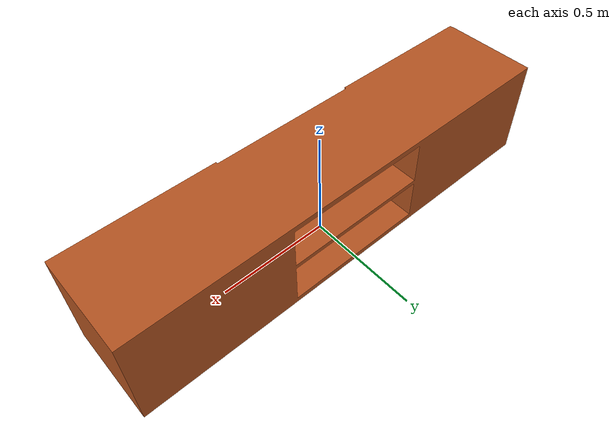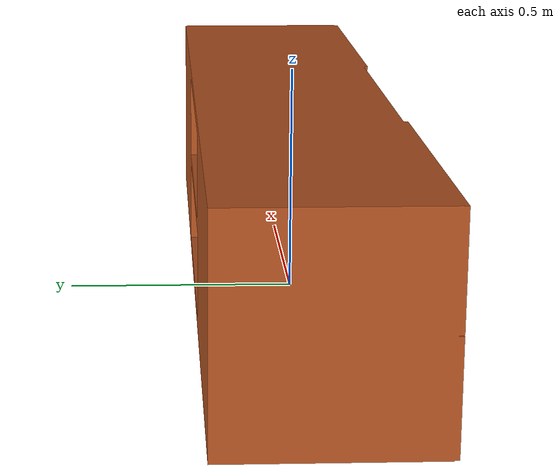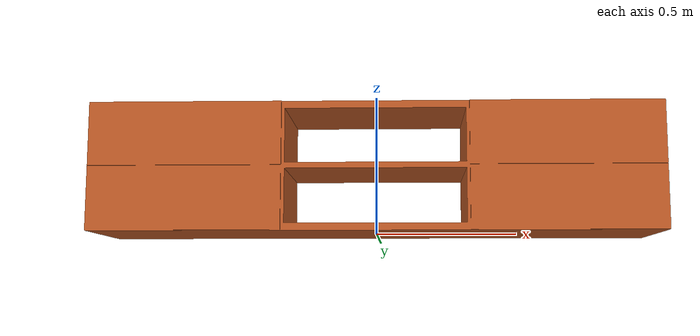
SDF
<?xml version='1.0'?>
<sdf version="1.4">
	<model name="tv_bench">
		<static>1</static>
		<link name="link">
			<visual name="mesh">
				<geometry>
					<mesh>
						<uri>model://meshes/tv_bench.dae</uri>
					</mesh>
				</geometry>
			</visual>
			<collision name="collider">
				<pose>0 0 0.225 0 0 0</pose>
				<geometry>
					<box>
						<size>2 0.43 0.45</size>
					</box>
				</geometry>
			</collision>
		</link>
	</model>
</sdf>
